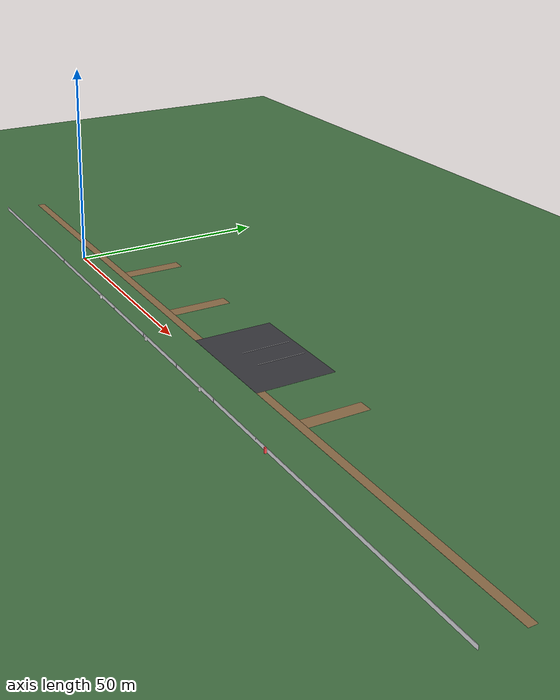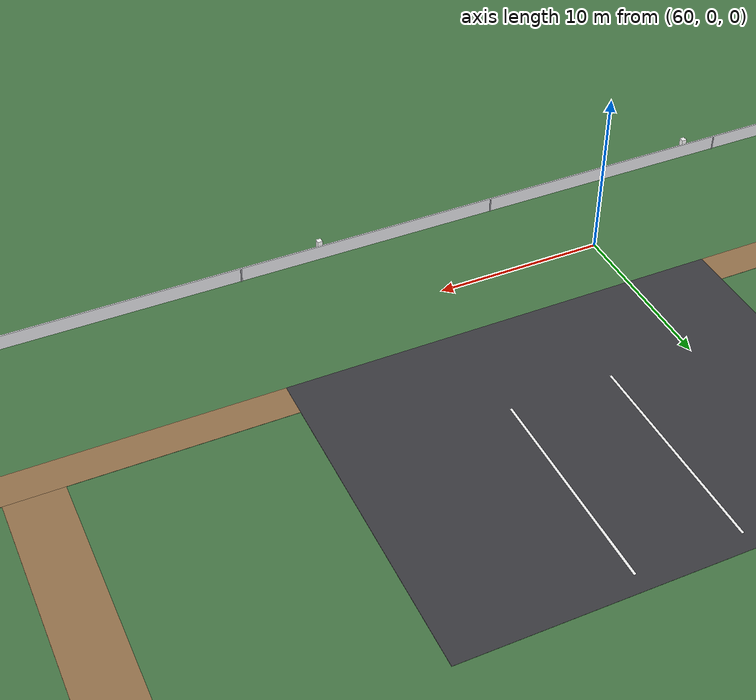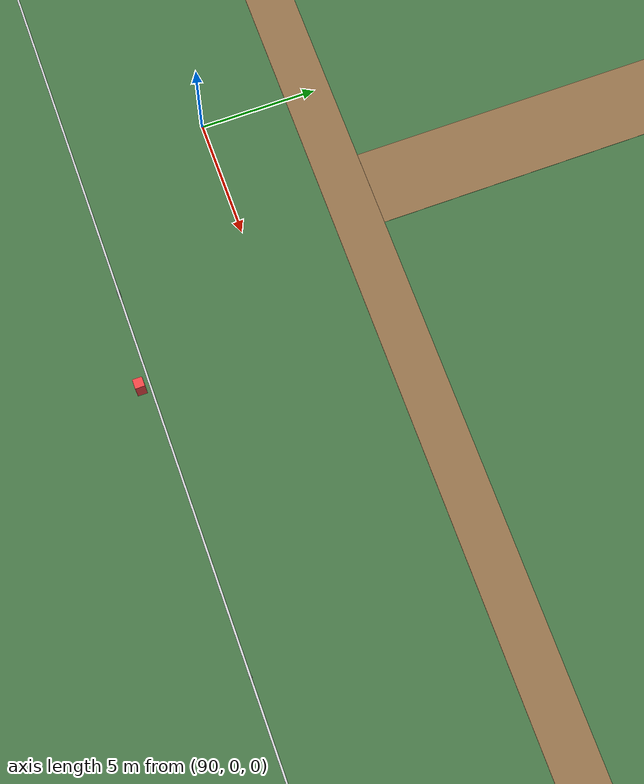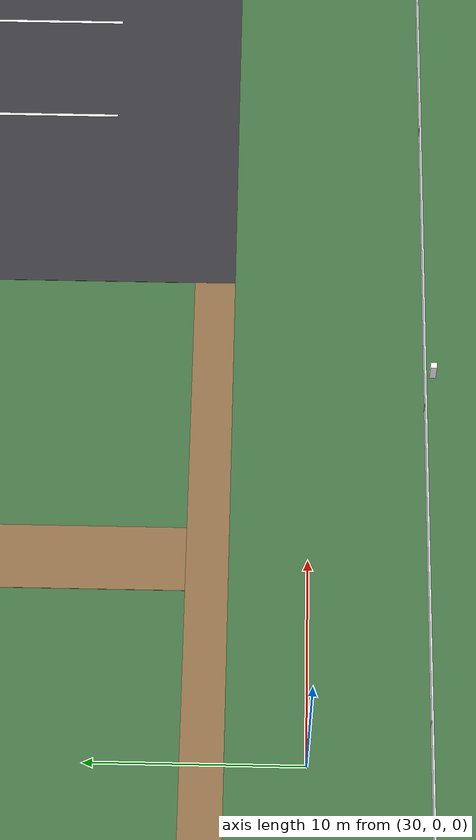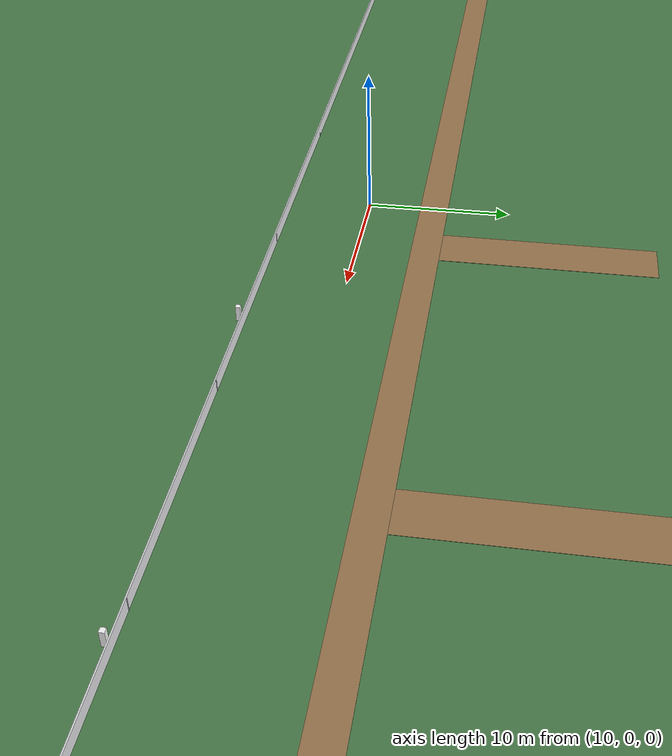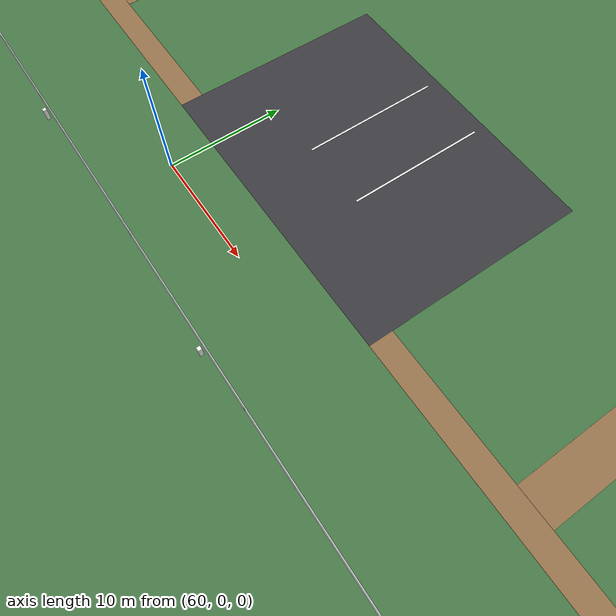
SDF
<sdf version="1.6">
 <world name="aeb_highway">
  <physics type="ode">
   <max_step_size>0.001</max_step_size>
   <real_time_factor>1.0</real_time_factor>
   <real_time_update_rate>1000</real_time_update_rate>
   <ode><solver><type>quick</type><iters>50</iters></solver></ode>
  </physics>
  <scene>
   <ambient>0.5 0.55 0.65 1</ambient>
   <background>0.65 0.78 0.92 1</background>
   <sky><clouds><speed>2.0</speed></clouds></sky>
   <shadows>true</shadows>
  </scene>
  <light name="sun" type="directional">
   <pose>0 0 100 0 0 0</pose>
   <diffuse>0.9 0.9 0.85 1</diffuse>
   <specular>0.3 0.3 0.3 1</specular>
   <direction>-0.3 0.2 -1.0</direction>
  </light>
  <light name="ambient" type="directional">
   <cast_shadows>false</cast_shadows>
   <pose>0 0 50 0 0 0</pose>
   <diffuse>0.4 0.4 0.5 1</diffuse>
   <specular>0.0 0.0 0.0 1</specular>
   <direction>0.1 -0.3 -1.0</direction>
  </light>
  <model name="ground_plane">
   <static>true</static>
   <link name="link">
    <collision name="collision">
     <geometry><plane><normal>0 0 1</normal><size>500 100</size></plane></geometry>
     <surface><friction><ode><mu>0.8</mu><mu2>0.8</mu2></ode></friction></surface>
    </collision>
    <visual name="visual">
     <geometry><plane><normal>0 0 1</normal><size>500 100</size></plane></geometry>
     <material><ambient>0.3 0.5 0.3 1</ambient><diffuse>0.3 0.5 0.3 1</diffuse></material>
    </visual>
   </link>
  </model>
  <model name="dirt_shoulder_north">
   <static>true</static>
   <link name="link">
    <pose>55 4.7 0.012 0 0 0</pose>
    <visual name="v">
     <geometry><box><size>200 2.0 0.02</size></box></geometry>
     <material><ambient>0.55 0.42 0.28 1</ambient><diffuse>0.62 0.48 0.32 1</diffuse></material>
    </visual>
   </link>
  </model>
  <model name="gas_station_apron">
   <static>true</static>
   <link name="link">
    <pose>68 13.35 0.014 0 0 0</pose>
    <visual name="v">
     <geometry><box><size>26 19.3 0.02</size></box></geometry>
     <material><ambient>0.18 0.18 0.20 1</ambient><diffuse>0.25 0.25 0.27 1</diffuse></material>
    </visual>
   </link>
  </model>
  <model name="apron_stripe_a">
   <static>true</static>
   <link name="link">
    <pose>65 16 0.016 0 0 0</pose>
    <visual name="v">
     <geometry><box><size>0.15 12 0.02</size></box></geometry>
     <material><ambient>0.95 0.95 0.95 1</ambient><diffuse>1 1 1 1</diffuse></material>
    </visual>
   </link>
  </model>
  <model name="apron_stripe_b">
   <static>true</static>
   <link name="link">
    <pose>71 16 0.016 0 0 0</pose>
    <visual name="v">
     <geometry><box><size>0.15 12 0.02</size></box></geometry>
     <material><ambient>0.95 0.95 0.95 1</ambient><diffuse>1 1 1 1</diffuse></material>
    </visual>
   </link>
  </model>
  <model name="dirt_drive_house_north_0">
   <static>true</static>
   <link name="link">
    <pose>15 13 0.014 0 0 0</pose>
    <visual name="v">
     <geometry><box><size>3.2 14.6 0.02</size></box></geometry>
     <material><ambient>0.55 0.42 0.28 1</ambient><diffuse>0.62 0.48 0.32 1</diffuse></material>
    </visual>
   </link>
  </model>
  <model name="dirt_drive_house_north_1">
   <static>true</static>
   <link name="link">
    <pose>40 13 0.014 0 0 0</pose>
    <visual name="v">
     <geometry><box><size>3.2 14.6 0.02</size></box></geometry>
     <material><ambient>0.55 0.42 0.28 1</ambient><diffuse>0.62 0.48 0.32 1</diffuse></material>
    </visual>
   </link>
  </model>
  <model name="dirt_drive_house_north_2">
   <static>true</static>
   <link name="link">
    <pose>95 13 0.014 0 0 0</pose>
    <visual name="v">
     <geometry><box><size>3.2 14.6 0.02</size></box></geometry>
     <material><ambient>0.55 0.42 0.28 1</ambient><diffuse>0.62 0.48 0.32 1</diffuse></material>
    </visual>
   </link>
  </model>
  <model name="guardrail_south">
   <static>true</static>
   <link name="link">
    <pose>55 -5.6 0.45 0 0 0</pose>
    <visual name="rail">
     <geometry><box><size>200 0.08 0.9</size></box></geometry>
     <material><ambient>0.75 0.75 0.78 1</ambient><diffuse>0.9 0.9 0.92 1</diffuse></material>
    </visual>
   </link>
  </model>
  <model name="guardrail_post_a">
   <static>true</static>
   <link name="link">
    <pose>0   -5.6 0.4 0 0 0</pose>
    <visual name="p">
     <geometry><cylinder><radius>0.06</radius><length>0.85</length></cylinder></geometry>
     <material><ambient>0.45 0.45 0.48 1</ambient><diffuse>0.55 0.55 0.58 1</diffuse></material>
    </visual>
   </link>
  </model>
  <model name="guardrail_post_b">
   <static>true</static>
   <link name="link">
    <pose>16  -5.6 0.4 0 0 0</pose>
    <visual name="p">
     <geometry><cylinder><radius>0.06</radius><length>0.85</length></cylinder></geometry>
     <material><ambient>0.45 0.45 0.48 1</ambient><diffuse>0.55 0.55 0.58 1</diffuse></material>
    </visual>
   </link>
  </model>
  <model name="guardrail_post_c">
   <static>true</static>
   <link name="link">
    <pose>32  -5.6 0.4 0 0 0</pose>
    <visual name="p">
     <geometry><cylinder><radius>0.06</radius><length>0.85</length></cylinder></geometry>
     <material><ambient>0.45 0.45 0.48 1</ambient><diffuse>0.55 0.55 0.58 1</diffuse></material>
    </visual>
   </link>
  </model>
  <model name="guardrail_post_d">
   <static>true</static>
   <link name="link">
    <pose>48  -5.6 0.4 0 0 0</pose>
    <visual name="p">
     <geometry><cylinder><radius>0.06</radius><length>0.85</length></cylinder></geometry>
     <material><ambient>0.45 0.45 0.48 1</ambient><diffuse>0.55 0.55 0.58 1</diffuse></material>
    </visual>
   </link>
  </model>
  <model name="guardrail_post_e">
   <static>true</static>
   <link name="link">
    <pose>64  -5.6 0.4 0 0 0</pose>
    <visual name="p">
     <geometry><cylinder><radius>0.06</radius><length>0.85</length></cylinder></geometry>
     <material><ambient>0.45 0.45 0.48 1</ambient><diffuse>0.55 0.55 0.58 1</diffuse></material>
    </visual>
   </link>
  </model>
  <model name="guardrail_post_f">
   <static>true</static>
   <link name="link">
    <pose>80  -5.6 0.4 0 0 0</pose>
    <visual name="p">
     <geometry><cylinder><radius>0.06</radius><length>0.85</length></cylinder></geometry>
     <material><ambient>0.45 0.45 0.48 1</ambient><diffuse>0.55 0.55 0.58 1</diffuse></material>
    </visual>
   </link>
  </model>
  <model name="guardrail_post_g">
   <static>true</static>
   <link name="link">
    <pose>96  -5.6 0.4 0 0 0</pose>
    <visual name="p">
     <geometry><cylinder><radius>0.06</radius><length>0.85</length></cylinder></geometry>
     <material><ambient>0.45 0.45 0.48 1</ambient><diffuse>0.55 0.55 0.58 1</diffuse></material>
    </visual>
   </link>
  </model>
  <model name="guardrail_post_h">
   <static>true</static>
   <link name="link">
    <pose>112 -5.6 0.4 0 0 0</pose>
    <visual name="p">
     <geometry><cylinder><radius>0.06</radius><length>0.85</length></cylinder></geometry>
     <material><ambient>0.45 0.45 0.48 1</ambient><diffuse>0.55 0.55 0.58 1</diffuse></material>
    </visual>
   </link>
  </model>
  <model name="km_marker_25">
   <static>true</static>
   <link name="link">
    <pose>25 -6.0 0.5 0 0 0</pose>
    <visual name="v">
     <geometry><box><size>0.3 0.3 1.0</size></box></geometry>
     <material><ambient>1 1 1 1</ambient><diffuse>1 1 1 1</diffuse></material>
    </visual>
   </link>
  </model>
  <model name="km_marker_50">
   <static>true</static>
   <link name="link">
    <pose>50 -6.0 0.5 0 0 0</pose>
    <visual name="v">
     <geometry><box><size>0.3 0.3 1.0</size></box></geometry>
     <material><ambient>1 1 1 1</ambient><diffuse>1 1 1 1</diffuse></material>
    </visual>
   </link>
  </model>
  <model name="km_marker_75">
   <static>true</static>
   <link name="link">
    <pose>75 -6.0 0.5 0 0 0</pose>
    <visual name="v">
     <geometry><box><size>0.3 0.3 1.0</size></box></geometry>
     <material><ambient>1 1 1 1</ambient><diffuse>1 1 1 1</diffuse></material>
    </visual>
   </link>
  </model>
  <model name="km_marker_100">
   <static>true</static>
   <link name="link">
    <pose>100 -6.0 0.6 0 0 0</pose>
    <visual name="v">
     <geometry><box><size>0.4 0.4 1.2</size></box></geometry>
     <material><ambient>0.95 0.2 0.2 1</ambient><diffuse>1 0.3 0.3 1</diffuse></material>
    </visual>
   </link>
  </model>
  <plugin name="gazebo_ros_state" filename="libgazebo_ros_state.so">
   <ros><namespace>/aeb</namespace></ros>
   <update_rate>100.0</update_rate>
  </plugin>
 </world>
</sdf>
